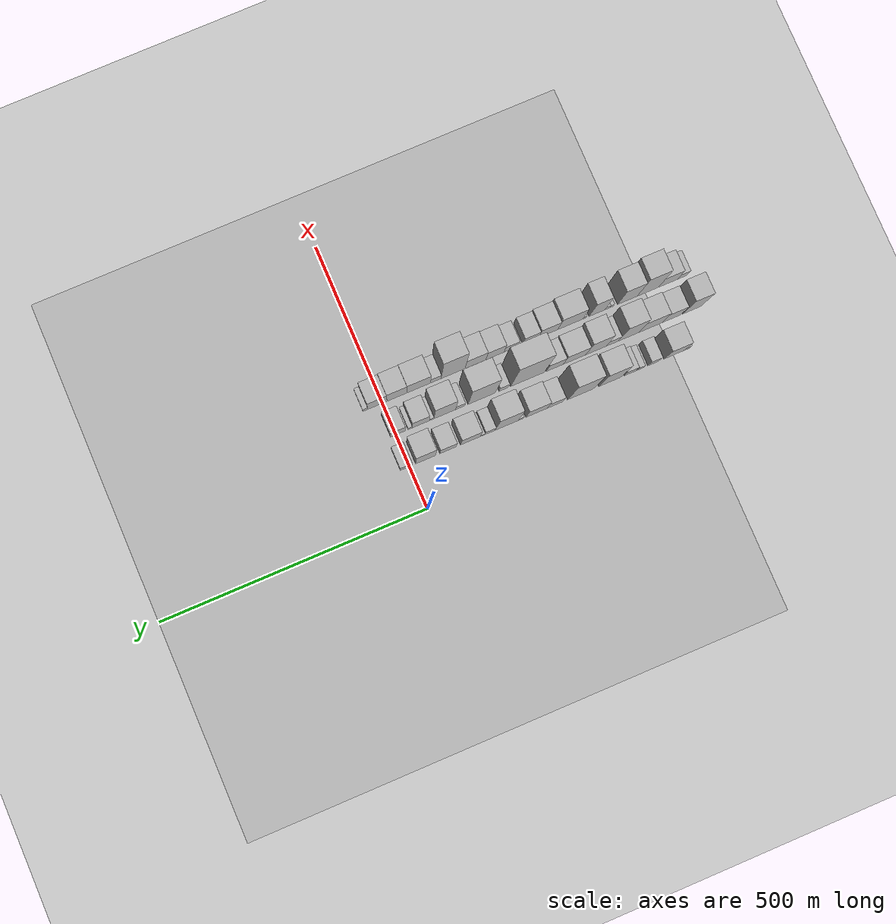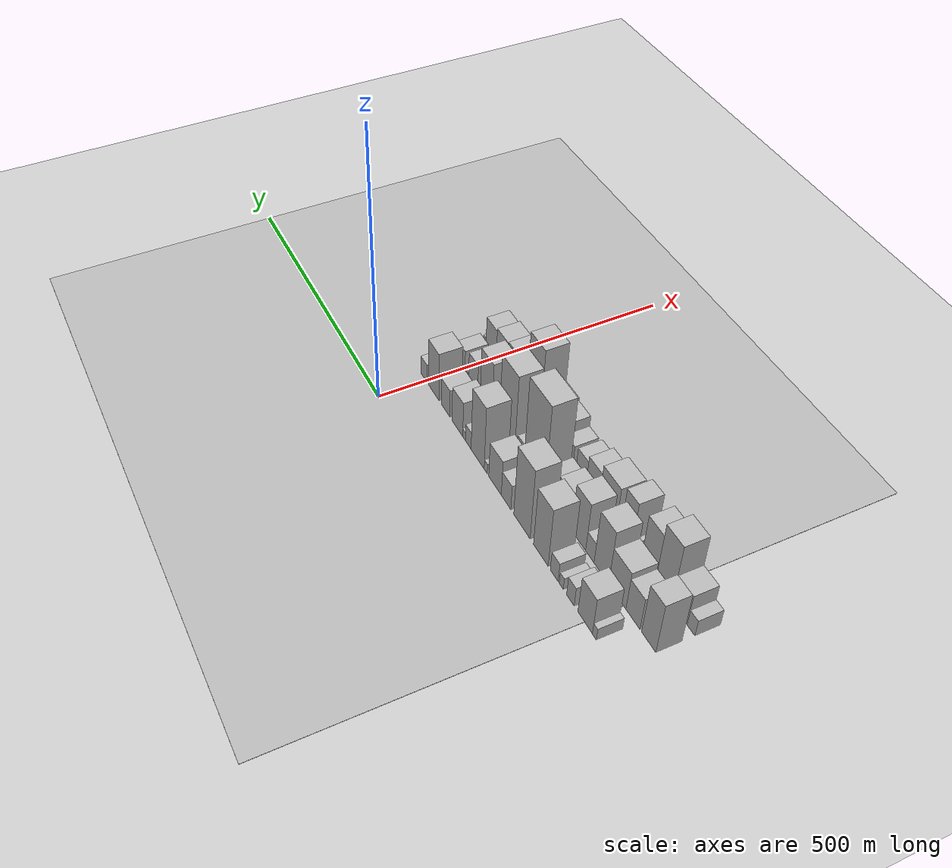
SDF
<sdf version="1.6">
 <world name="default">
  <include><name>ground_plane_1</name><uri>model://HANNAS_ground_plane</uri></include>
  <include>
   <name>ground_plane_2</name>
   <uri>model://HANNAS_ground_plane</uri>
   <pose>100 0 0  0 0 0</pose>
  </include>
  <model name="building_1">
   <static>1</static>
   <pose>100.0000 -525.4028 0 0.000000 0.000000 0.000000</pose>
   <link name="link">
    <pose>0 0 12.00 0 0 0</pose>
    <collision name="collision"><geometry><box><size>40.0000 10.3981 24.0000</size></box></geometry></collision>
    <visual name="visual">
     <cast_shadows>0</cast_shadows>
     <geometry><box><size>40.0000 10.3981 24.0000</size></box></geometry>
     <material>
      <script>
       <uri>model://HANNAS_wall/materials/scripts</uri>
       <uri>model://HANNAS_wall/materials/textures</uri>
       <name>vrc/HANNAS_wall</name>
      </script>
     </material>
    </visual>
   </link>
  </model>
  <model name="building_2">
   <static>1</static>
   <pose>100.0000 -501.1264 0 0.000000 0.000000 0.000000</pose>
   <link name="link">
    <pose>0 0 37.50 0 0 0</pose>
    <collision name="collision"><geometry><box><size>40.0000 38.1547 75.0000</size></box></geometry></collision>
    <visual name="visual">
     <cast_shadows>0</cast_shadows>
     <geometry><box><size>40.0000 38.1547 75.0000</size></box></geometry>
     <material>
      <script>
       <uri>model://HANNAS_wall/materials/scripts</uri>
       <uri>model://HANNAS_wall/materials/textures</uri>
       <name>vrc/HANNAS_wall</name>
      </script>
     </material>
    </visual>
   </link>
  </model>
  <model name="building_3">
   <static>1</static>
   <pose>100.0000 -461.7086 0 0.000000 0.000000 0.000000</pose>
   <link name="link">
    <pose>0 0 19.50 0 0 0</pose>
    <collision name="collision"><geometry><box><size>40.0000 20.6809 39.0000</size></box></geometry></collision>
    <visual name="visual">
     <cast_shadows>0</cast_shadows>
     <geometry><box><size>40.0000 20.6809 39.0000</size></box></geometry>
     <material>
      <script>
       <uri>model://HANNAS_wall/materials/scripts</uri>
       <uri>model://HANNAS_wall/materials/textures</uri>
       <name>vrc/HANNAS_wall</name>
      </script>
     </material>
    </visual>
   </link>
  </model>
  <model name="building_4">
   <static>1</static>
   <pose>100.0000 -436.6622 0 0.000000 0.000000 0.000000</pose>
   <link name="link">
    <pose>0 0 12.00 0 0 0</pose>
    <collision name="collision"><geometry><box><size>40.0000 11.4119 24.0000</size></box></geometry></collision>
    <visual name="visual">
     <cast_shadows>0</cast_shadows>
     <geometry><box><size>40.0000 11.4119 24.0000</size></box></geometry>
     <material>
      <script>
       <uri>model://HANNAS_wall/materials/scripts</uri>
       <uri>model://HANNAS_wall/materials/textures</uri>
       <name>vrc/HANNAS_wall</name>
      </script>
     </material>
    </visual>
   </link>
  </model>
  <model name="building_5">
   <static>1</static>
   <pose>100.0000 -416.9289 0 0.000000 0.000000 0.000000</pose>
   <link name="link">
    <pose>0 0 19.50 0 0 0</pose>
    <collision name="collision"><geometry><box><size>40.0000 22.0547 39.0000</size></box></geometry></collision>
    <visual name="visual">
     <cast_shadows>0</cast_shadows>
     <geometry><box><size>40.0000 22.0547 39.0000</size></box></geometry>
     <material>
      <script>
       <uri>model://HANNAS_wall/materials/scripts</uri>
       <uri>model://HANNAS_wall/materials/textures</uri>
       <name>vrc/HANNAS_wall</name>
      </script>
     </material>
    </visual>
   </link>
  </model>
  <model name="building_6">
   <static>1</static>
   <pose>100.0000 -378.7087 0 0.000000 0.000000 0.000000</pose>
   <link name="link">
    <pose>0 0 60.00 0 0 0</pose>
    <collision name="collision"><geometry><box><size>40.0000 42.3856 120.0000</size></box></geometry></collision>
    <visual name="visual">
     <cast_shadows>0</cast_shadows>
     <geometry><box><size>40.0000 42.3856 120.0000</size></box></geometry>
     <material>
      <script>
       <uri>model://HANNAS_wall/materials/scripts</uri>
       <uri>model://HANNAS_wall/materials/textures</uri>
       <name>vrc/HANNAS_wall</name>
      </script>
     </material>
    </visual>
   </link>
  </model>
  <model name="building_7">
   <static>1</static>
   <pose>100.0000 -322.8838 0 0.000000 0.000000 0.000000</pose>
   <link name="link">
    <pose>0 0 72.00 0 0 0</pose>
    <collision name="collision"><geometry><box><size>40.0000 49.2643 144.0000</size></box></geometry></collision>
    <visual name="visual">
     <cast_shadows>0</cast_shadows>
     <geometry><box><size>40.0000 49.2643 144.0000</size></box></geometry>
     <material>
      <script>
       <uri>model://HANNAS_wall/materials/scripts</uri>
       <uri>model://HANNAS_wall/materials/textures</uri>
       <name>vrc/HANNAS_wall</name>
      </script>
     </material>
    </visual>
   </link>
  </model>
  <model name="building_8">
   <static>1</static>
   <pose>100.0000 -274.3842 0 0.000000 0.000000 0.000000</pose>
   <link name="link">
    <pose>0 0 25.50 0 0 0</pose>
    <collision name="collision"><geometry><box><size>40.0000 29.7349 51.0000</size></box></geometry></collision>
    <visual name="visual">
     <cast_shadows>0</cast_shadows>
     <geometry><box><size>40.0000 29.7349 51.0000</size></box></geometry>
     <material>
      <script>
       <uri>model://HANNAS_wall/materials/scripts</uri>
       <uri>model://HANNAS_wall/materials/textures</uri>
       <name>vrc/HANNAS_wall</name>
      </script>
     </material>
    </visual>
   </link>
  </model>
  <model name="building_9">
   <static>1</static>
   <pose>100.0000 -239.4780 0 0.000000 0.000000 0.000000</pose>
   <link name="link">
    <pose>0 0 36.00 0 0 0</pose>
    <collision name="collision"><geometry><box><size>40.0000 40.0774 72.0000</size></box></geometry></collision>
    <visual name="visual">
     <cast_shadows>0</cast_shadows>
     <geometry><box><size>40.0000 40.0774 72.0000</size></box></geometry>
     <material>
      <script>
       <uri>model://HANNAS_wall/materials/scripts</uri>
       <uri>model://HANNAS_wall/materials/textures</uri>
       <name>vrc/HANNAS_wall</name>
      </script>
     </material>
    </visual>
   </link>
  </model>
  <model name="building_10">
   <static>1</static>
   <pose>100.0000 -209.4909 0 0.000000 0.000000 0.000000</pose>
   <link name="link">
    <pose>0 0 10.50 0 0 0</pose>
    <collision name="collision"><geometry><box><size>40.0000 9.8969 21.0000</size></box></geometry></collision>
    <visual name="visual">
     <cast_shadows>0</cast_shadows>
     <geometry><box><size>40.0000 9.8969 21.0000</size></box></geometry>
     <material>
      <script>
       <uri>model://HANNAS_wall/materials/scripts</uri>
       <uri>model://HANNAS_wall/materials/textures</uri>
       <name>vrc/HANNAS_wall</name>
      </script>
     </material>
    </visual>
   </link>
  </model>
  <model name="building_11">
   <static>1</static>
   <pose>100.0000 -182.8452 0 0.000000 0.000000 0.000000</pose>
   <link name="link">
    <pose>0 0 64.50 0 0 0</pose>
    <collision name="collision"><geometry><box><size>40.0000 43.3944 129.0000</size></box></geometry></collision>
    <visual name="visual">
     <cast_shadows>0</cast_shadows>
     <geometry><box><size>40.0000 43.3944 129.0000</size></box></geometry>
     <material>
      <script>
       <uri>model://HANNAS_wall/materials/scripts</uri>
       <uri>model://HANNAS_wall/materials/textures</uri>
       <name>vrc/HANNAS_wall</name>
      </script>
     </material>
    </visual>
   </link>
  </model>
  <model name="building_12">
   <static>1</static>
   <pose>100.0000 -151.3688 0 0.000000 0.000000 0.000000</pose>
   <link name="link">
    <pose>0 0 18.00 0 0 0</pose>
    <collision name="collision"><geometry><box><size>40.0000 19.5585 36.0000</size></box></geometry></collision>
    <visual name="visual">
     <cast_shadows>0</cast_shadows>
     <geometry><box><size>40.0000 19.5585 36.0000</size></box></geometry>
     <material>
      <script>
       <uri>model://HANNAS_wall/materials/scripts</uri>
       <uri>model://HANNAS_wall/materials/textures</uri>
       <name>vrc/HANNAS_wall</name>
      </script>
     </material>
    </visual>
   </link>
  </model>
  <model name="building_13">
   <static>1</static>
   <pose>100.0000 -137.1788 0 0.000000 0.000000 0.000000</pose>
   <link name="link">
    <pose>0 0 9.00 0 0 0</pose>
    <collision name="collision"><geometry><box><size>40.0000 8.8215 18.0000</size></box></geometry></collision>
    <visual name="visual">
     <cast_shadows>0</cast_shadows>
     <geometry><box><size>40.0000 8.8215 18.0000</size></box></geometry>
     <material>
      <script>
       <uri>model://HANNAS_wall/materials/scripts</uri>
       <uri>model://HANNAS_wall/materials/textures</uri>
       <name>vrc/HANNAS_wall</name>
      </script>
     </material>
    </visual>
   </link>
  </model>
  <model name="building_14">
   <static>1</static>
   <pose>100.0000 -114.2665 0 0.000000 0.000000 0.000000</pose>
   <link name="link">
    <pose>0 0 36.00 0 0 0</pose>
    <collision name="collision"><geometry><box><size>40.0000 37.0031 72.0000</size></box></geometry></collision>
    <visual name="visual">
     <cast_shadows>0</cast_shadows>
     <geometry><box><size>40.0000 37.0031 72.0000</size></box></geometry>
     <material>
      <script>
       <uri>model://HANNAS_wall/materials/scripts</uri>
       <uri>model://HANNAS_wall/materials/textures</uri>
       <name>vrc/HANNAS_wall</name>
      </script>
     </material>
    </visual>
   </link>
  </model>
  <model name="building_15">
   <static>1</static>
   <pose>100.0000 -72.3574 0 0.000000 0.000000 0.000000</pose>
   <link name="link">
    <pose>0 0 28.50 0 0 0</pose>
    <collision name="collision"><geometry><box><size>40.0000 30.8151 57.0000</size></box></geometry></collision>
    <visual name="visual">
     <cast_shadows>0</cast_shadows>
     <geometry><box><size>40.0000 30.8151 57.0000</size></box></geometry>
     <material>
      <script>
       <uri>model://HANNAS_wall/materials/scripts</uri>
       <uri>model://HANNAS_wall/materials/textures</uri>
       <name>vrc/HANNAS_wall</name>
      </script>
     </material>
    </visual>
   </link>
  </model>
  <model name="building_16">
   <static>1</static>
   <pose>100.0000 -30.0958 0 0.000000 0.000000 0.000000</pose>
   <link name="link">
    <pose>0 0 49.50 0 0 0</pose>
    <collision name="collision"><geometry><box><size>40.0000 37.7082 99.0000</size></box></geometry></collision>
    <visual name="visual">
     <cast_shadows>0</cast_shadows>
     <geometry><box><size>40.0000 37.7082 99.0000</size></box></geometry>
     <material>
      <script>
       <uri>model://HANNAS_wall/materials/scripts</uri>
       <uri>model://HANNAS_wall/materials/textures</uri>
       <name>vrc/HANNAS_wall</name>
      </script>
     </material>
    </visual>
   </link>
  </model>
  <model name="building_17">
   <static>1</static>
   <pose>100.0000 6.1590 0 0.000000 0.000000 0.000000</pose>
   <link name="link">
    <pose>0 0 19.50 0 0 0</pose>
    <collision name="collision"><geometry><box><size>40.0000 22.8013 39.0000</size></box></geometry></collision>
    <visual name="visual">
     <cast_shadows>0</cast_shadows>
     <geometry><box><size>40.0000 22.8013 39.0000</size></box></geometry>
     <material>
      <script>
       <uri>model://HANNAS_wall/materials/scripts</uri>
       <uri>model://HANNAS_wall/materials/textures</uri>
       <name>vrc/HANNAS_wall</name>
      </script>
     </material>
    </visual>
   </link>
  </model>
  <model name="building_34">
   <static>1</static>
   <pose>160.0000 -562.5379 0 0.000000 0.000000 0.000000</pose>
   <link name="link">
    <pose>0 0 51.00 0 0 0</pose>
    <collision name="collision"><geometry><box><size>40.0000 34.9241 102.0000</size></box></geometry></collision>
    <visual name="visual">
     <cast_shadows>0</cast_shadows>
     <geometry><box><size>40.0000 34.9241 102.0000</size></box></geometry>
     <material>
      <script>
       <uri>model://HANNAS_wall/materials/scripts</uri>
       <uri>model://HANNAS_wall/materials/textures</uri>
       <name>vrc/HANNAS_wall</name>
      </script>
     </material>
    </visual>
   </link>
  </model>
  <model name="building_35">
   <static>1</static>
   <pose>160.0000 -523.3172 0 0.000000 0.000000 0.000000</pose>
   <link name="link">
    <pose>0 0 33.00 0 0 0</pose>
    <collision name="collision"><geometry><box><size>40.0000 35.5174 66.0000</size></box></geometry></collision>
    <visual name="visual">
     <cast_shadows>0</cast_shadows>
     <geometry><box><size>40.0000 35.5174 66.0000</size></box></geometry>
     <material>
      <script>
       <uri>model://HANNAS_wall/materials/scripts</uri>
       <uri>model://HANNAS_wall/materials/textures</uri>
       <name>vrc/HANNAS_wall</name>
      </script>
     </material>
    </visual>
   </link>
  </model>
  <model name="building_36">
   <static>1</static>
   <pose>160.0000 -483.0762 0 0.000000 0.000000 0.000000</pose>
   <link name="link">
    <pose>0 0 39.00 0 0 0</pose>
    <collision name="collision"><geometry><box><size>40.0000 44.9645 78.0000</size></box></geometry></collision>
    <visual name="visual">
     <cast_shadows>0</cast_shadows>
     <geometry><box><size>40.0000 44.9645 78.0000</size></box></geometry>
     <material>
      <script>
       <uri>model://HANNAS_wall/materials/scripts</uri>
       <uri>model://HANNAS_wall/materials/textures</uri>
       <name>vrc/HANNAS_wall</name>
      </script>
     </material>
    </visual>
   </link>
  </model>
  <model name="building_37">
   <static>1</static>
   <pose>160.0000 -440.9841 0 0.000000 0.000000 0.000000</pose>
   <link name="link">
    <pose>0 0 55.50 0 0 0</pose>
    <collision name="collision"><geometry><box><size>40.0000 39.2198 111.0000</size></box></geometry></collision>
    <visual name="visual">
     <cast_shadows>0</cast_shadows>
     <geometry><box><size>40.0000 39.2198 111.0000</size></box></geometry>
     <material>
      <script>
       <uri>model://HANNAS_wall/materials/scripts</uri>
       <uri>model://HANNAS_wall/materials/textures</uri>
       <name>vrc/HANNAS_wall</name>
      </script>
     </material>
    </visual>
   </link>
  </model>
  <model name="building_38">
   <static>1</static>
   <pose>160.0000 -409.8720 0 0.000000 0.000000 0.000000</pose>
   <link name="link">
    <pose>0 0 21.00 0 0 0</pose>
    <collision name="collision"><geometry><box><size>40.0000 23.0044 42.0000</size></box></geometry></collision>
    <visual name="visual">
     <cast_shadows>0</cast_shadows>
     <geometry><box><size>40.0000 23.0044 42.0000</size></box></geometry>
     <material>
      <script>
       <uri>model://HANNAS_wall/materials/scripts</uri>
       <uri>model://HANNAS_wall/materials/textures</uri>
       <name>vrc/HANNAS_wall</name>
      </script>
     </material>
    </visual>
   </link>
  </model>
  <model name="building_39">
   <static>1</static>
   <pose>160.0000 -378.7268 0 0.000000 0.000000 0.000000</pose>
   <link name="link">
    <pose>0 0 49.50 0 0 0</pose>
    <collision name="collision"><geometry><box><size>40.0000 39.2858 99.0000</size></box></geometry></collision>
    <visual name="visual">
     <cast_shadows>0</cast_shadows>
     <geometry><box><size>40.0000 39.2858 99.0000</size></box></geometry>
     <material>
      <script>
       <uri>model://HANNAS_wall/materials/scripts</uri>
       <uri>model://HANNAS_wall/materials/textures</uri>
       <name>vrc/HANNAS_wall</name>
      </script>
     </material>
    </visual>
   </link>
  </model>
  <model name="building_40">
   <static>1</static>
   <pose>160.0000 -337.7056 0 0.000000 0.000000 0.000000</pose>
   <link name="link">
    <pose>0 0 36.00 0 0 0</pose>
    <collision name="collision"><geometry><box><size>40.0000 42.7567 72.0000</size></box></geometry></collision>
    <visual name="visual">
     <cast_shadows>0</cast_shadows>
     <geometry><box><size>40.0000 42.7567 72.0000</size></box></geometry>
     <material>
      <script>
       <uri>model://HANNAS_wall/materials/scripts</uri>
       <uri>model://HANNAS_wall/materials/textures</uri>
       <name>vrc/HANNAS_wall</name>
      </script>
     </material>
    </visual>
   </link>
  </model>
  <model name="building_41">
   <static>1</static>
   <pose>160.0000 -300.3167 0 0.000000 0.000000 0.000000</pose>
   <link name="link">
    <pose>0 0 30.00 0 0 0</pose>
    <collision name="collision"><geometry><box><size>40.0000 32.0211 60.0000</size></box></geometry></collision>
    <visual name="visual">
     <cast_shadows>0</cast_shadows>
     <geometry><box><size>40.0000 32.0211 60.0000</size></box></geometry>
     <material>
      <script>
       <uri>model://HANNAS_wall/materials/scripts</uri>
       <uri>model://HANNAS_wall/materials/textures</uri>
       <name>vrc/HANNAS_wall</name>
      </script>
     </material>
    </visual>
   </link>
  </model>
  <model name="building_42">
   <static>1</static>
   <pose>160.0000 -248.3981 0 0.000000 0.000000 0.000000</pose>
   <link name="link">
    <pose>0 0 88.50 0 0 0</pose>
    <collision name="collision"><geometry><box><size>40.0000 63.8161 177.0000</size></box></geometry></collision>
    <visual name="visual">
     <cast_shadows>0</cast_shadows>
     <geometry><box><size>40.0000 63.8161 177.0000</size></box></geometry>
     <material>
      <script>
       <uri>model://HANNAS_wall/materials/scripts</uri>
       <uri>model://HANNAS_wall/materials/textures</uri>
       <name>vrc/HANNAS_wall</name>
      </script>
     </material>
    </visual>
   </link>
  </model>
  <model name="building_43">
   <static>1</static>
   <pose>160.0000 -203.3899 0 0.000000 0.000000 0.000000</pose>
   <link name="link">
    <pose>0 0 18.00 0 0 0</pose>
    <collision name="collision"><geometry><box><size>40.0000 18.2003 36.0000</size></box></geometry></collision>
    <visual name="visual">
     <cast_shadows>0</cast_shadows>
     <geometry><box><size>40.0000 18.2003 36.0000</size></box></geometry>
     <material>
      <script>
       <uri>model://HANNAS_wall/materials/scripts</uri>
       <uri>model://HANNAS_wall/materials/textures</uri>
       <name>vrc/HANNAS_wall</name>
      </script>
     </material>
    </visual>
   </link>
  </model>
  <model name="building_44">
   <static>1</static>
   <pose>160.0000 -161.5203 0 0.000000 0.000000 0.000000</pose>
   <link name="link">
    <pose>0 0 75.00 0 0 0</pose>
    <collision name="collision"><geometry><box><size>40.0000 51.5389 150.0000</size></box></geometry></collision>
    <visual name="visual">
     <cast_shadows>0</cast_shadows>
     <geometry><box><size>40.0000 51.5389 150.0000</size></box></geometry>
     <material>
      <script>
       <uri>model://HANNAS_wall/materials/scripts</uri>
       <uri>model://HANNAS_wall/materials/textures</uri>
       <name>vrc/HANNAS_wall</name>
      </script>
     </material>
    </visual>
   </link>
  </model>
  <model name="building_45">
   <static>1</static>
   <pose>160.0000 -120.8886 0 0.000000 0.000000 0.000000</pose>
   <link name="link">
    <pose>0 0 16.50 0 0 0</pose>
    <collision name="collision"><geometry><box><size>40.0000 17.7243 33.0000</size></box></geometry></collision>
    <visual name="visual">
     <cast_shadows>0</cast_shadows>
     <geometry><box><size>40.0000 17.7243 33.0000</size></box></geometry>
     <material>
      <script>
       <uri>model://HANNAS_wall/materials/scripts</uri>
       <uri>model://HANNAS_wall/materials/textures</uri>
       <name>vrc/HANNAS_wall</name>
      </script>
     </material>
    </visual>
   </link>
  </model>
  <model name="building_46">
   <static>1</static>
   <pose>160.0000 -91.6735 0 0.000000 0.000000 0.000000</pose>
   <link name="link">
    <pose>0 0 54.00 0 0 0</pose>
    <collision name="collision"><geometry><box><size>40.0000 40.7060 108.0000</size></box></geometry></collision>
    <visual name="visual">
     <cast_shadows>0</cast_shadows>
     <geometry><box><size>40.0000 40.7060 108.0000</size></box></geometry>
     <material>
      <script>
       <uri>model://HANNAS_wall/materials/scripts</uri>
       <uri>model://HANNAS_wall/materials/textures</uri>
       <name>vrc/HANNAS_wall</name>
      </script>
     </material>
    </visual>
   </link>
  </model>
  <model name="building_47">
   <static>1</static>
   <pose>160.0000 -66.9246 0 0.000000 0.000000 0.000000</pose>
   <link name="link">
    <pose>0 0 9.00 0 0 0</pose>
    <collision name="collision"><geometry><box><size>40.0000 8.7919 18.0000</size></box></geometry></collision>
    <visual name="visual">
     <cast_shadows>0</cast_shadows>
     <geometry><box><size>40.0000 8.7919 18.0000</size></box></geometry>
     <material>
      <script>
       <uri>model://HANNAS_wall/materials/scripts</uri>
       <uri>model://HANNAS_wall/materials/textures</uri>
       <name>vrc/HANNAS_wall</name>
      </script>
     </material>
    </visual>
   </link>
  </model>
  <model name="building_48">
   <static>1</static>
   <pose>160.0000 -46.6002 0 0.000000 0.000000 0.000000</pose>
   <link name="link">
    <pose>0 0 31.50 0 0 0</pose>
    <collision name="collision"><geometry><box><size>40.0000 31.8569 63.0000</size></box></geometry></collision>
    <visual name="visual">
     <cast_shadows>0</cast_shadows>
     <geometry><box><size>40.0000 31.8569 63.0000</size></box></geometry>
     <material>
      <script>
       <uri>model://HANNAS_wall/materials/scripts</uri>
       <uri>model://HANNAS_wall/materials/textures</uri>
       <name>vrc/HANNAS_wall</name>
      </script>
     </material>
    </visual>
   </link>
  </model>
  <model name="building_49">
   <static>1</static>
   <pose>160.0000 -26.6145 0 0.000000 0.000000 0.000000</pose>
   <link name="link">
    <pose>0 0 9.00 0 0 0</pose>
    <collision name="collision"><geometry><box><size>40.0000 8.1146 18.0000</size></box></geometry></collision>
    <visual name="visual">
     <cast_shadows>0</cast_shadows>
     <geometry><box><size>40.0000 8.1146 18.0000</size></box></geometry>
     <material>
      <script>
       <uri>model://HANNAS_wall/materials/scripts</uri>
       <uri>model://HANNAS_wall/materials/textures</uri>
       <name>vrc/HANNAS_wall</name>
      </script>
     </material>
    </visual>
   </link>
  </model>
  <model name="building_50">
   <static>1</static>
   <pose>160.0000 -3.5424 0 0.000000 0.000000 0.000000</pose>
   <link name="link">
    <pose>0 0 27.00 0 0 0</pose>
    <collision name="collision"><geometry><box><size>40.0000 28.0295 54.0000</size></box></geometry></collision>
    <visual name="visual">
     <cast_shadows>0</cast_shadows>
     <geometry><box><size>40.0000 28.0295 54.0000</size></box></geometry>
     <material>
      <script>
       <uri>model://HANNAS_wall/materials/scripts</uri>
       <uri>model://HANNAS_wall/materials/textures</uri>
       <name>vrc/HANNAS_wall</name>
      </script>
     </material>
    </visual>
   </link>
  </model>
  <model name="building_74">
   <static>1</static>
   <pose>220.0000 -570.7407 0 0.000000 0.000000 0.000000</pose>
   <link name="link">
    <pose>0 0 16.50 0 0 0</pose>
    <collision name="collision"><geometry><box><size>40.0000 18.5185 33.0000</size></box></geometry></collision>
    <visual name="visual">
     <cast_shadows>0</cast_shadows>
     <geometry><box><size>40.0000 18.5185 33.0000</size></box></geometry>
     <material>
      <script>
       <uri>model://HANNAS_wall/materials/scripts</uri>
       <uri>model://HANNAS_wall/materials/textures</uri>
       <name>vrc/HANNAS_wall</name>
      </script>
     </material>
    </visual>
   </link>
  </model>
  <model name="building_75">
   <static>1</static>
   <pose>220.0000 -543.1382 0 0.000000 0.000000 0.000000</pose>
   <link name="link">
    <pose>0 0 31.50 0 0 0</pose>
    <collision name="collision"><geometry><box><size>40.0000 36.6865 63.0000</size></box></geometry></collision>
    <visual name="visual">
     <cast_shadows>0</cast_shadows>
     <geometry><box><size>40.0000 36.6865 63.0000</size></box></geometry>
     <material>
      <script>
       <uri>model://HANNAS_wall/materials/scripts</uri>
       <uri>model://HANNAS_wall/materials/textures</uri>
       <name>vrc/HANNAS_wall</name>
      </script>
     </material>
    </visual>
   </link>
  </model>
  <model name="building_76">
   <static>1</static>
   <pose>220.0000 -504.3303 0 0.000000 0.000000 0.000000</pose>
   <link name="link">
    <pose>0 0 61.50 0 0 0</pose>
    <collision name="collision"><geometry><box><size>40.0000 40.9294 123.0000</size></box></geometry></collision>
    <visual name="visual">
     <cast_shadows>0</cast_shadows>
     <geometry><box><size>40.0000 40.9294 123.0000</size></box></geometry>
     <material>
      <script>
       <uri>model://HANNAS_wall/materials/scripts</uri>
       <uri>model://HANNAS_wall/materials/textures</uri>
       <name>vrc/HANNAS_wall</name>
      </script>
     </material>
    </visual>
   </link>
  </model>
  <model name="building_77">
   <static>1</static>
   <pose>220.0000 -465.1437 0 0.000000 0.000000 0.000000</pose>
   <link name="link">
    <pose>0 0 49.50 0 0 0</pose>
    <collision name="collision"><geometry><box><size>40.0000 37.4437 99.0000</size></box></geometry></collision>
    <visual name="visual">
     <cast_shadows>0</cast_shadows>
     <geometry><box><size>40.0000 37.4437 99.0000</size></box></geometry>
     <material>
      <script>
       <uri>model://HANNAS_wall/materials/scripts</uri>
       <uri>model://HANNAS_wall/materials/textures</uri>
       <name>vrc/HANNAS_wall</name>
      </script>
     </material>
    </visual>
   </link>
  </model>
  <model name="building_78">
   <static>1</static>
   <pose>220.0000 -434.6774 0 0.000000 0.000000 0.000000</pose>
   <link name="link">
    <pose>0 0 9.00 0 0 0</pose>
    <collision name="collision"><geometry><box><size>40.0000 7.4890 18.0000</size></box></geometry></collision>
    <visual name="visual">
     <cast_shadows>0</cast_shadows>
     <geometry><box><size>40.0000 7.4890 18.0000</size></box></geometry>
     <material>
      <script>
       <uri>model://HANNAS_wall/materials/scripts</uri>
       <uri>model://HANNAS_wall/materials/textures</uri>
       <name>vrc/HANNAS_wall</name>
      </script>
     </material>
    </visual>
   </link>
  </model>
  <model name="building_79">
   <static>1</static>
   <pose>220.0000 -426.6285 0 0.000000 0.000000 0.000000</pose>
   <link name="link">
    <pose>0 0 10.50 0 0 0</pose>
    <collision name="collision"><geometry><box><size>40.0000 8.6088 21.0000</size></box></geometry></collision>
    <visual name="visual">
     <cast_shadows>0</cast_shadows>
     <geometry><box><size>40.0000 8.6088 21.0000</size></box></geometry>
     <material>
      <script>
       <uri>model://HANNAS_wall/materials/scripts</uri>
       <uri>model://HANNAS_wall/materials/textures</uri>
       <name>vrc/HANNAS_wall</name>
      </script>
     </material>
    </visual>
   </link>
  </model>
  <model name="building_80">
   <static>1</static>
   <pose>220.0000 -407.1948 0 0.000000 0.000000 0.000000</pose>
   <link name="link">
    <pose>0 0 48.00 0 0 0</pose>
    <collision name="collision"><geometry><box><size>40.0000 30.2586 96.0000</size></box></geometry></collision>
    <visual name="visual">
     <cast_shadows>0</cast_shadows>
     <geometry><box><size>40.0000 30.2586 96.0000</size></box></geometry>
     <material>
      <script>
       <uri>model://HANNAS_wall/materials/scripts</uri>
       <uri>model://HANNAS_wall/materials/textures</uri>
       <name>vrc/HANNAS_wall</name>
      </script>
     </material>
    </visual>
   </link>
  </model>
  <model name="building_81">
   <static>1</static>
   <pose>220.0000 -382.8688 0 0.000000 0.000000 0.000000</pose>
   <link name="link">
    <pose>0 0 7.50 0 0 0</pose>
    <collision name="collision"><geometry><box><size>40.0000 6.3934 15.0000</size></box></geometry></collision>
    <visual name="visual">
     <cast_shadows>0</cast_shadows>
     <geometry><box><size>40.0000 6.3934 15.0000</size></box></geometry>
     <material>
      <script>
       <uri>model://HANNAS_wall/materials/scripts</uri>
       <uri>model://HANNAS_wall/materials/textures</uri>
       <name>vrc/HANNAS_wall</name>
      </script>
     </material>
    </visual>
   </link>
  </model>
  <model name="building_82">
   <static>1</static>
   <pose>220.0000 -356.0192 0 0.000000 0.000000 0.000000</pose>
   <link name="link">
    <pose>0 0 40.50 0 0 0</pose>
    <collision name="collision"><geometry><box><size>40.0000 47.3058 81.0000</size></box></geometry></collision>
    <visual name="visual">
     <cast_shadows>0</cast_shadows>
     <geometry><box><size>40.0000 47.3058 81.0000</size></box></geometry>
     <material>
      <script>
       <uri>model://HANNAS_wall/materials/scripts</uri>
       <uri>model://HANNAS_wall/materials/textures</uri>
       <name>vrc/HANNAS_wall</name>
      </script>
     </material>
    </visual>
   </link>
  </model>
  <model name="building_83">
   <static>1</static>
   <pose>220.0000 -313.8655 0 0.000000 0.000000 0.000000</pose>
   <link name="link">
    <pose>0 0 31.50 0 0 0</pose>
    <collision name="collision"><geometry><box><size>40.0000 37.0017 63.0000</size></box></geometry></collision>
    <visual name="visual">
     <cast_shadows>0</cast_shadows>
     <geometry><box><size>40.0000 37.0017 63.0000</size></box></geometry>
     <material>
      <script>
       <uri>model://HANNAS_wall/materials/scripts</uri>
       <uri>model://HANNAS_wall/materials/textures</uri>
       <name>vrc/HANNAS_wall</name>
      </script>
     </material>
    </visual>
   </link>
  </model>
  <model name="building_84">
   <static>1</static>
   <pose>220.0000 -280.4509 0 0.000000 0.000000 0.000000</pose>
   <link name="link">
    <pose>0 0 25.50 0 0 0</pose>
    <collision name="collision"><geometry><box><size>40.0000 29.8276 51.0000</size></box></geometry></collision>
    <visual name="visual">
     <cast_shadows>0</cast_shadows>
     <geometry><box><size>40.0000 29.8276 51.0000</size></box></geometry>
     <material>
      <script>
       <uri>model://HANNAS_wall/materials/scripts</uri>
       <uri>model://HANNAS_wall/materials/textures</uri>
       <name>vrc/HANNAS_wall</name>
      </script>
     </material>
    </visual>
   </link>
  </model>
  <model name="building_85">
   <static>1</static>
   <pose>220.0000 -243.2221 0 0.000000 0.000000 0.000000</pose>
   <link name="link">
    <pose>0 0 22.50 0 0 0</pose>
    <collision name="collision"><geometry><box><size>40.0000 26.6300 45.0000</size></box></geometry></collision>
    <visual name="visual">
     <cast_shadows>0</cast_shadows>
     <geometry><box><size>40.0000 26.6300 45.0000</size></box></geometry>
     <material>
      <script>
       <uri>model://HANNAS_wall/materials/scripts</uri>
       <uri>model://HANNAS_wall/materials/textures</uri>
       <name>vrc/HANNAS_wall</name>
      </script>
     </material>
    </visual>
   </link>
  </model>
  <model name="building_86">
   <static>1</static>
   <pose>220.0000 -212.4920 0 0.000000 0.000000 0.000000</pose>
   <link name="link">
    <pose>0 0 33.00 0 0 0</pose>
    <collision name="collision"><geometry><box><size>40.0000 34.8303 66.0000</size></box></geometry></collision>
    <visual name="visual">
     <cast_shadows>0</cast_shadows>
     <geometry><box><size>40.0000 34.8303 66.0000</size></box></geometry>
     <material>
      <script>
       <uri>model://HANNAS_wall/materials/scripts</uri>
       <uri>model://HANNAS_wall/materials/textures</uri>
       <name>vrc/HANNAS_wall</name>
      </script>
     </material>
    </visual>
   </link>
  </model>
  <model name="building_87">
   <static>1</static>
   <pose>220.0000 -175.4583 0 0.000000 0.000000 0.000000</pose>
   <link name="link">
    <pose>0 0 36.00 0 0 0</pose>
    <collision name="collision"><geometry><box><size>40.0000 39.2370 72.0000</size></box></geometry></collision>
    <visual name="visual">
     <cast_shadows>0</cast_shadows>
     <geometry><box><size>40.0000 39.2370 72.0000</size></box></geometry>
     <material>
      <script>
       <uri>model://HANNAS_wall/materials/scripts</uri>
       <uri>model://HANNAS_wall/materials/textures</uri>
       <name>vrc/HANNAS_wall</name>
      </script>
     </material>
    </visual>
   </link>
  </model>
  <model name="building_88">
   <static>1</static>
   <pose>220.0000 -133.1613 0 0.000000 0.000000 0.000000</pose>
   <link name="link">
    <pose>0 0 75.00 0 0 0</pose>
    <collision name="collision"><geometry><box><size>40.0000 45.3571 150.0000</size></box></geometry></collision>
    <visual name="visual">
     <cast_shadows>0</cast_shadows>
     <geometry><box><size>40.0000 45.3571 150.0000</size></box></geometry>
     <material>
      <script>
       <uri>model://HANNAS_wall/materials/scripts</uri>
       <uri>model://HANNAS_wall/materials/textures</uri>
       <name>vrc/HANNAS_wall</name>
      </script>
     </material>
    </visual>
   </link>
  </model>
  <model name="building_89">
   <static>1</static>
   <pose>220.0000 -100.4471 0 0.000000 0.000000 0.000000</pose>
   <link name="link">
    <pose>0 0 18.00 0 0 0</pose>
    <collision name="collision"><geometry><box><size>40.0000 20.0712 36.0000</size></box></geometry></collision>
    <visual name="visual">
     <cast_shadows>0</cast_shadows>
     <geometry><box><size>40.0000 20.0712 36.0000</size></box></geometry>
     <material>
      <script>
       <uri>model://HANNAS_wall/materials/scripts</uri>
       <uri>model://HANNAS_wall/materials/textures</uri>
       <name>vrc/HANNAS_wall</name>
      </script>
     </material>
    </visual>
   </link>
  </model>
  <model name="building_90">
   <static>1</static>
   <pose>220.0000 -68.2507 0 0.000000 0.000000 0.000000</pose>
   <link name="link">
    <pose>0 0 37.50 0 0 0</pose>
    <collision name="collision"><geometry><box><size>40.0000 44.3216 75.0000</size></box></geometry></collision>
    <visual name="visual">
     <cast_shadows>0</cast_shadows>
     <geometry><box><size>40.0000 44.3216 75.0000</size></box></geometry>
     <material>
      <script>
       <uri>model://HANNAS_wall/materials/scripts</uri>
       <uri>model://HANNAS_wall/materials/textures</uri>
       <name>vrc/HANNAS_wall</name>
      </script>
     </material>
    </visual>
   </link>
  </model>
  <model name="building_91">
   <static>1</static>
   <pose>220.0000 -27.2272 0 0.000000 0.000000 0.000000</pose>
   <link name="link">
    <pose>0 0 36.00 0 0 0</pose>
    <collision name="collision"><geometry><box><size>40.0000 37.7255 72.0000</size></box></geometry></collision>
    <visual name="visual">
     <cast_shadows>0</cast_shadows>
     <geometry><box><size>40.0000 37.7255 72.0000</size></box></geometry>
     <material>
      <script>
       <uri>model://HANNAS_wall/materials/scripts</uri>
       <uri>model://HANNAS_wall/materials/textures</uri>
       <name>vrc/HANNAS_wall</name>
      </script>
     </material>
    </visual>
   </link>
  </model>
  <model name="building_92">
   <static>1</static>
   <pose>220.0000 9.6811 0 0.000000 0.000000 0.000000</pose>
   <link name="link">
    <pose>0 0 33.00 0 0 0</pose>
    <collision name="collision"><geometry><box><size>40.0000 36.0911 66.0000</size></box></geometry></collision>
    <visual name="visual">
     <cast_shadows>0</cast_shadows>
     <geometry><box><size>40.0000 36.0911 66.0000</size></box></geometry>
     <material>
      <script>
       <uri>model://HANNAS_wall/materials/scripts</uri>
       <uri>model://HANNAS_wall/materials/textures</uri>
       <name>vrc/HANNAS_wall</name>
      </script>
     </material>
    </visual>
   </link>
  </model>
  <model name="building_93">
   <static>1</static>
   <pose>220.0000 32.4482 0 0.000000 0.000000 0.000000</pose>
   <link name="link">
    <pose>0 0 10.50 0 0 0</pose>
    <collision name="collision"><geometry><box><size>40.0000 9.4430 21.0000</size></box></geometry></collision>
    <visual name="visual">
     <cast_shadows>0</cast_shadows>
     <geometry><box><size>40.0000 9.4430 21.0000</size></box></geometry>
     <material>
      <script>
       <uri>model://HANNAS_wall/materials/scripts</uri>
       <uri>model://HANNAS_wall/materials/textures</uri>
       <name>vrc/HANNAS_wall</name>
      </script>
     </material>
    </visual>
   </link>
  </model>
 </world>
</sdf>
